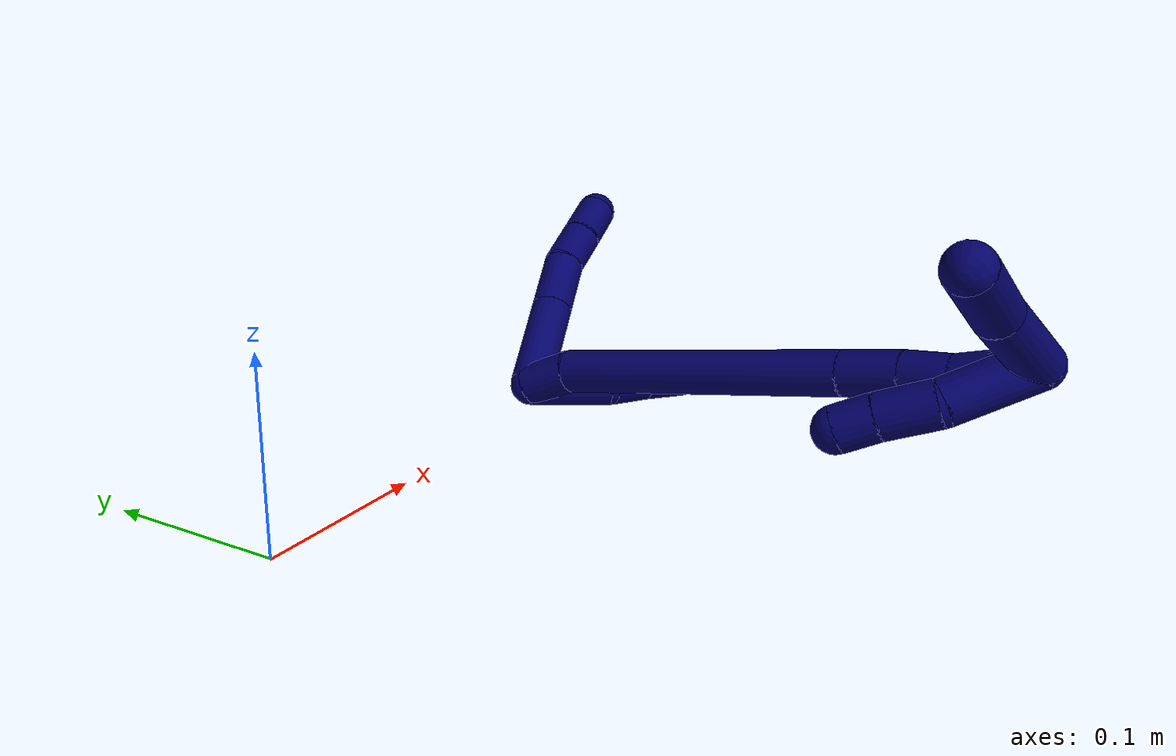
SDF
<sdf version="1.7">
 <world name="default">
  <model name="7">
   <static>0</static>
   <link name="7">
    <collision name="collision-cylinder-e_1_2_8">
     <pose>-0.001303 0.013189 0.026555 -0.460971 -0.043901 0.010303</pose>
     <geometry><cylinder><radius>0.0125</radius><length>0.059357</length></cylinder></geometry>
     <surface>
      <friction><ode><mu>1.16</mu><mu2>1.16</mu2><slip1>0</slip1><slip2>0</slip2></ode></friction>
      <contact><ode><kp>1e+06</kp><kd>1</kd><max_vel>0</max_vel><min_depth>0.001</min_depth></ode></contact>
     </surface>
    </collision>
    <visual name="visual-cylinder-e_1_2_8">
     <pose>-0.001303 0.013189 0.026555 -0.460971 -0.043901 0.010303</pose>
     <geometry><cylinder><radius>0.0125</radius><length>0.059357</length></cylinder></geometry>
     <material><ambient>0.003922 0 0.403922 1</ambient></material>
    </visual>
    <collision name="collision-cylinder-e_2_8_9">
     <pose>-0.004505 0.034953 0.068502 -0.508292 -0.10741 0.027926</pose>
     <geometry><cylinder><radius>0.0125</radius><length>0.035442</length></cylinder></geometry>
     <surface>
      <friction><ode><mu>1.16</mu><mu2>1.16</mu2><slip1>0</slip1><slip2>0</slip2></ode></friction>
      <contact><ode><kp>1e+06</kp><kd>1</kd><max_vel>0</max_vel><min_depth>0.001</min_depth></ode></contact>
     </surface>
    </collision>
    <visual name="visual-cylinder-e_2_8_9">
     <pose>-0.004505 0.034953 0.068502 -0.508292 -0.10741 0.027926</pose>
     <geometry><cylinder><radius>0.0125</radius><length>0.035442</length></cylinder></geometry>
     <material><ambient>0.003922 0 0.403922 1</ambient></material>
    </visual>
    <collision name="collision-cylinder-e_3_9_10">
     <pose>-0.008518 0.046973 0.096614 -0.264506 -0.159044 0.021201</pose>
     <geometry><cylinder><radius>0.0125</radius><length>0.026694</length></cylinder></geometry>
     <surface>
      <friction><ode><mu>1.16</mu><mu2>1.16</mu2><slip1>0</slip1><slip2>0</slip2></ode></friction>
      <contact><ode><kp>1e+06</kp><kd>1</kd><max_vel>0</max_vel><min_depth>0.001</min_depth></ode></contact>
     </surface>
    </collision>
    <visual name="visual-cylinder-e_3_9_10">
     <pose>-0.008518 0.046973 0.096614 -0.264506 -0.159044 0.021201</pose>
     <geometry><cylinder><radius>0.0125</radius><length>0.026694</length></cylinder></geometry>
     <material><ambient>0.003922 0 0.403922 1</ambient></material>
    </visual>
    <collision name="collision-cylinder-e_4_10_6">
     <pose>-0.011335 0.053575 0.123216 -0.223599 -0.049343 0.005541</pose>
     <geometry><cylinder><radius>0.0125</radius><length>0.028506</length></cylinder></geometry>
     <surface>
      <friction><ode><mu>1.16</mu><mu2>1.16</mu2><slip1>0</slip1><slip2>0</slip2></ode></friction>
      <contact><ode><kp>1e+06</kp><kd>1</kd><max_vel>0</max_vel><min_depth>0.001</min_depth></ode></contact>
     </surface>
    </collision>
    <visual name="visual-cylinder-e_4_10_6">
     <pose>-0.011335 0.053575 0.123216 -0.223599 -0.049343 0.005541</pose>
     <geometry><cylinder><radius>0.0125</radius><length>0.028506</length></cylinder></geometry>
     <material><ambient>0.003922 0 0.403922 1</ambient></material>
    </visual>
    <collision name="collision-cylinder-e_1_2_11">
     <pose>-0.014916 -0.013674 0.013378 0.796344 -0.66226 -0.287231</pose>
     <geometry><cylinder><radius>0.0125</radius><length>0.048515</length></cylinder></geometry>
     <surface>
      <friction><ode><mu>1.16</mu><mu2>1.16</mu2><slip1>0</slip1><slip2>0</slip2></ode></friction>
      <contact><ode><kp>1e+06</kp><kd>1</kd><max_vel>0</max_vel><min_depth>0.001</min_depth></ode></contact>
     </surface>
    </collision>
    <visual name="visual-cylinder-e_1_2_11">
     <pose>-0.014916 -0.013674 0.013378 0.796344 -0.66226 -0.287231</pose>
     <geometry><cylinder><radius>0.0125</radius><length>0.048515</length></cylinder></geometry>
     <material><ambient>0.003922 0 0.403922 1</ambient></material>
    </visual>
    <collision name="collision-cylinder-e_2_11_12">
     <pose>-0.034531 -0.032711 0.036004 0.525568 -0.414142 -0.112906</pose>
     <geometry><cylinder><radius>0.0125</radius><length>0.023356</length></cylinder></geometry>
     <surface>
      <friction><ode><mu>1.16</mu><mu2>1.16</mu2><slip1>0</slip1><slip2>0</slip2></ode></friction>
      <contact><ode><kp>1e+06</kp><kd>1</kd><max_vel>0</max_vel><min_depth>0.001</min_depth></ode></contact>
     </surface>
    </collision>
    <visual name="visual-cylinder-e_2_11_12">
     <pose>-0.034531 -0.032711 0.036004 0.525568 -0.414142 -0.112906</pose>
     <geometry><cylinder><radius>0.0125</radius><length>0.023356</length></cylinder></geometry>
     <material><ambient>0.003922 0 0.403922 1</ambient></material>
    </visual>
    <collision name="collision-cylinder-e_3_12_5">
     <pose>-0.043593 -0.045062 0.056651 0.549847 -0.315393 -0.089646</pose>
     <geometry><cylinder><radius>0.0125</radius><length>0.028129</length></cylinder></geometry>
     <surface>
      <friction><ode><mu>1.16</mu><mu2>1.16</mu2><slip1>0</slip1><slip2>0</slip2></ode></friction>
      <contact><ode><kp>1e+06</kp><kd>1</kd><max_vel>0</max_vel><min_depth>0.001</min_depth></ode></contact>
     </surface>
    </collision>
    <visual name="visual-cylinder-e_3_12_5">
     <pose>-0.043593 -0.045062 0.056651 0.549847 -0.315393 -0.089646</pose>
     <geometry><cylinder><radius>0.0125</radius><length>0.028129</length></cylinder></geometry>
     <material><ambient>0.003922 0 0.403922 1</ambient></material>
    </visual>
    <collision name="collision-cylinder-e_1_2_13">
     <pose>-0.014511 -0.001656 0.001647 0.788154 -1.41118 -0.680892</pose>
     <geometry><cylinder><radius>0.0125</radius><length>0.029396</length></cylinder></geometry>
     <surface>
      <friction><ode><mu>1.16</mu><mu2>1.16</mu2><slip1>0</slip1><slip2>0</slip2></ode></friction>
      <contact><ode><kp>1e+06</kp><kd>1</kd><max_vel>0</max_vel><min_depth>0.001</min_depth></ode></contact>
     </surface>
    </collision>
    <visual name="visual-cylinder-e_1_2_13">
     <pose>-0.014511 -0.001656 0.001647 0.788154 -1.41118 -0.680892</pose>
     <geometry><cylinder><radius>0.0125</radius><length>0.029396</length></cylinder></geometry>
     <material><ambient>0.003922 0 0.403922 1</ambient></material>
    </visual>
    <collision name="collision-cylinder-e_2_13_14">
     <pose>-0.109129 -0.032544 -0.000378 1.69579 -1.21838 -1.33829</pose>
     <geometry><cylinder><radius>0.0125</radius><length>0.170706</length></cylinder></geometry>
     <surface>
      <friction><ode><mu>1.16</mu><mu2>1.16</mu2><slip1>0</slip1><slip2>0</slip2></ode></friction>
      <contact><ode><kp>1e+06</kp><kd>1</kd><max_vel>0</max_vel><min_depth>0.001</min_depth></ode></contact>
     </surface>
    </collision>
    <visual name="visual-cylinder-e_2_13_14">
     <pose>-0.109129 -0.032544 -0.000378 1.69579 -1.21838 -1.33829</pose>
     <geometry><cylinder><radius>0.0125</radius><length>0.170706</length></cylinder></geometry>
     <material><ambient>0.003922 0 0.403922 1</ambient></material>
    </visual>
    <collision name="collision-cylinder-e_3_14_15">
     <pose>-0.204804 -0.06727 -0.005263 1.78784 -1.224 -1.43602</pose>
     <geometry><cylinder><radius>0.0125</radius><length>0.033106</length></cylinder></geometry>
     <surface>
      <friction><ode><mu>1.16</mu><mu2>1.16</mu2><slip1>0</slip1><slip2>0</slip2></ode></friction>
      <contact><ode><kp>1e+06</kp><kd>1</kd><max_vel>0</max_vel><min_depth>0.001</min_depth></ode></contact>
     </surface>
    </collision>
    <visual name="visual-cylinder-e_3_14_15">
     <pose>-0.204804 -0.06727 -0.005263 1.78784 -1.224 -1.43602</pose>
     <geometry><cylinder><radius>0.0125</radius><length>0.033106</length></cylinder></geometry>
     <material><ambient>0.003922 0 0.403922 1</ambient></material>
    </visual>
    <collision name="collision-cylinder-e_4_15_16">
     <pose>-0.232104 -0.077624 -0.008186 1.90946 -1.15697 -1.49005</pose>
     <geometry><cylinder><radius>0.0125</radius><length>0.025628</length></cylinder></geometry>
     <surface>
      <friction><ode><mu>1.16</mu><mu2>1.16</mu2><slip1>0</slip1><slip2>0</slip2></ode></friction>
      <contact><ode><kp>1e+06</kp><kd>1</kd><max_vel>0</max_vel><min_depth>0.001</min_depth></ode></contact>
     </surface>
    </collision>
    <visual name="visual-cylinder-e_4_15_16">
     <pose>-0.232104 -0.077624 -0.008186 1.90946 -1.15697 -1.49005</pose>
     <geometry><cylinder><radius>0.0125</radius><length>0.025628</length></cylinder></geometry>
     <material><ambient>0.003922 0 0.403922 1</ambient></material>
    </visual>
    <collision name="collision-cylinder-e_5_16_17">
     <pose>-0.253853 -0.084881 -0.010486 1.81123 -1.3292 -1.56961</pose>
     <geometry><cylinder><radius>0.0125</radius><length>0.020632</length></cylinder></geometry>
     <surface>
      <friction><ode><mu>1.16</mu><mu2>1.16</mu2><slip1>0</slip1><slip2>0</slip2></ode></friction>
      <contact><ode><kp>1e+06</kp><kd>1</kd><max_vel>0</max_vel><min_depth>0.001</min_depth></ode></contact>
     </surface>
    </collision>
    <visual name="visual-cylinder-e_5_16_17">
     <pose>-0.253853 -0.084881 -0.010486 1.81123 -1.3292 -1.56961</pose>
     <geometry><cylinder><radius>0.0125</radius><length>0.020632</length></cylinder></geometry>
     <material><ambient>0.003922 0 0.403922 1</ambient></material>
    </visual>
    <collision name="collision-cylinder-e_6_17_1">
     <pose>-0.274072 -0.088401 -0.010845 1.36981 -1.45902 -1.26148</pose>
     <geometry><cylinder><radius>0.0125</radius><length>0.020531</length></cylinder></geometry>
     <surface>
      <friction><ode><mu>1.16</mu><mu2>1.16</mu2><slip1>0</slip1><slip2>0</slip2></ode></friction>
      <contact><ode><kp>1e+06</kp><kd>1</kd><max_vel>0</max_vel><min_depth>0.001</min_depth></ode></contact>
     </surface>
    </collision>
    <visual name="visual-cylinder-e_6_17_1">
     <pose>-0.274072 -0.088401 -0.010845 1.36981 -1.45902 -1.26148</pose>
     <geometry><cylinder><radius>0.0125</radius><length>0.020531</length></cylinder></geometry>
     <material><ambient>0.003922 0 0.403922 1</ambient></material>
    </visual>
    <collision name="collision-cylinder-e_1_1_18">
     <pose>-0.264005 -0.085396 -0.023189 -2.82445 0.992403 -2.56716</pose>
     <geometry><cylinder><radius>0.0125</radius><length>0.04841</length></cylinder></geometry>
     <surface>
      <friction><ode><mu>1.16</mu><mu2>1.16</mu2><slip1>0</slip1><slip2>0</slip2></ode></friction>
      <contact><ode><kp>1e+06</kp><kd>1</kd><max_vel>0</max_vel><min_depth>0.001</min_depth></ode></contact>
     </surface>
    </collision>
    <visual name="visual-cylinder-e_1_1_18">
     <pose>-0.264005 -0.085396 -0.023189 -2.82445 0.992403 -2.56716</pose>
     <geometry><cylinder><radius>0.0125</radius><length>0.04841</length></cylinder></geometry>
     <material><ambient>0.003922 0 0.403922 1</ambient></material>
    </visual>
    <collision name="collision-cylinder-e_2_18_19">
     <pose>-0.22923 -0.077838 -0.039311 -2.37309 1.24279 -2.11344</pose>
     <geometry><cylinder><radius>0.0125</radius><length>0.030647</length></cylinder></geometry>
     <surface>
      <friction><ode><mu>1.16</mu><mu2>1.16</mu2><slip1>0</slip1><slip2>0</slip2></ode></friction>
      <contact><ode><kp>1e+06</kp><kd>1</kd><max_vel>0</max_vel><min_depth>0.001</min_depth></ode></contact>
     </surface>
    </collision>
    <visual name="visual-cylinder-e_2_18_19">
     <pose>-0.22923 -0.077838 -0.039311 -2.37309 1.24279 -2.11344</pose>
     <geometry><cylinder><radius>0.0125</radius><length>0.030647</length></cylinder></geometry>
     <material><ambient>0.003922 0 0.403922 1</ambient></material>
    </visual>
    <collision name="collision-cylinder-e_3_19_4">
     <pose>-0.204833 -0.072786 -0.045892 -2.65055 1.23624 -2.46398</pose>
     <geometry><cylinder><radius>0.0125</radius><length>0.020942</length></cylinder></geometry>
     <surface>
      <friction><ode><mu>1.16</mu><mu2>1.16</mu2><slip1>0</slip1><slip2>0</slip2></ode></friction>
      <contact><ode><kp>1e+06</kp><kd>1</kd><max_vel>0</max_vel><min_depth>0.001</min_depth></ode></contact>
     </surface>
    </collision>
    <visual name="visual-cylinder-e_3_19_4">
     <pose>-0.204833 -0.072786 -0.045892 -2.65055 1.23624 -2.46398</pose>
     <geometry><cylinder><radius>0.0125</radius><length>0.020942</length></cylinder></geometry>
     <material><ambient>0.003922 0 0.403922 1</ambient></material>
    </visual>
    <collision name="collision-cylinder-e_1_1_20">
     <pose>-0.288145 -0.068074 -0.026749 -2.21565 -0.143274 0.285568</pose>
     <geometry><cylinder><radius>0.0125</radius><length>0.054233</length></cylinder></geometry>
     <surface>
      <friction><ode><mu>1.16</mu><mu2>1.16</mu2><slip1>0</slip1><slip2>0</slip2></ode></friction>
      <contact><ode><kp>1e+06</kp><kd>1</kd><max_vel>0</max_vel><min_depth>0.001</min_depth></ode></contact>
     </surface>
    </collision>
    <visual name="visual-cylinder-e_1_1_20">
     <pose>-0.288145 -0.068074 -0.026749 -2.21565 -0.143274 0.285568</pose>
     <geometry><cylinder><radius>0.0125</radius><length>0.054233</length></cylinder></geometry>
     <material><ambient>0.003922 0 0.403922 1</ambient></material>
    </visual>
    <collision name="collision-cylinder-e_2_20_3">
     <pose>-0.297558 -0.029983 -0.057578 -2.29423 -0.244573 0.532092</pose>
     <geometry><cylinder><radius>0.0125</radius><length>0.045767</length></cylinder></geometry>
     <surface>
      <friction><ode><mu>1.16</mu><mu2>1.16</mu2><slip1>0</slip1><slip2>0</slip2></ode></friction>
      <contact><ode><kp>1e+06</kp><kd>1</kd><max_vel>0</max_vel><min_depth>0.001</min_depth></ode></contact>
     </surface>
    </collision>
    <visual name="visual-cylinder-e_2_20_3">
     <pose>-0.297558 -0.029983 -0.057578 -2.29423 -0.244573 0.532092</pose>
     <geometry><cylinder><radius>0.0125</radius><length>0.045767</length></cylinder></geometry>
     <material><ambient>0.003922 0 0.403922 1</ambient></material>
    </visual>
    <collision name="collision-sphere-3">
     <pose>-0.303099 -0.013341 -0.072275 0 -0 0</pose>
     <geometry><sphere><radius>0.0125</radius></sphere></geometry>
     <surface>
      <friction><ode><mu>1.16</mu><mu2>1.16</mu2><slip1>0</slip1><slip2>0</slip2></ode></friction>
      <contact><ode><kp>1e+06</kp><kd>1</kd><max_vel>0</max_vel><min_depth>0.001</min_depth></ode></contact>
     </surface>
    </collision>
    <visual name="visual-sphere-3">
     <pose>-0.303099 -0.013341 -0.072275 0 -0 0</pose>
     <geometry><sphere><radius>0.0125</radius></sphere></geometry>
     <material><ambient>0.003922 0 0.403922 1</ambient></material>
    </visual>
    <collision name="collision-sphere-20">
     <pose>-0.292017 -0.046624 -0.042881 0 -0 0</pose>
     <geometry><sphere><radius>0.0125</radius></sphere></geometry>
     <surface>
      <friction><ode><mu>1.16</mu><mu2>1.16</mu2><slip1>0</slip1><slip2>0</slip2></ode></friction>
      <contact><ode><kp>1e+06</kp><kd>1</kd><max_vel>0</max_vel><min_depth>0.001</min_depth></ode></contact>
     </surface>
    </collision>
    <visual name="visual-sphere-20">
     <pose>-0.292017 -0.046624 -0.042881 0 -0 0</pose>
     <geometry><sphere><radius>0.0125</radius></sphere></geometry>
     <material><ambient>0.003922 0 0.403922 1</ambient></material>
    </visual>
    <collision name="collision-sphere-4">
     <pose>-0.194943 -0.071164 -0.048924 0 -0 0</pose>
     <geometry><sphere><radius>0.0125</radius></sphere></geometry>
     <surface>
      <friction><ode><mu>1.16</mu><mu2>1.16</mu2><slip1>0</slip1><slip2>0</slip2></ode></friction>
      <contact><ode><kp>1e+06</kp><kd>1</kd><max_vel>0</max_vel><min_depth>0.001</min_depth></ode></contact>
     </surface>
    </collision>
    <visual name="visual-sphere-4">
     <pose>-0.194943 -0.071164 -0.048924 0 -0 0</pose>
     <geometry><sphere><radius>0.0125</radius></sphere></geometry>
     <material><ambient>0.003922 0 0.403922 1</ambient></material>
    </visual>
    <collision name="collision-sphere-11">
     <pose>-0.029832 -0.027348 0.026756 0 -0 0</pose>
     <geometry><sphere><radius>0.0125</radius></sphere></geometry>
     <surface>
      <friction><ode><mu>1.16</mu><mu2>1.16</mu2><slip1>0</slip1><slip2>0</slip2></ode></friction>
      <contact><ode><kp>1e+06</kp><kd>1</kd><max_vel>0</max_vel><min_depth>0.001</min_depth></ode></contact>
     </surface>
    </collision>
    <visual name="visual-sphere-11">
     <pose>-0.029832 -0.027348 0.026756 0 -0 0</pose>
     <geometry><sphere><radius>0.0125</radius></sphere></geometry>
     <material><ambient>0.003922 0 0.403922 1</ambient></material>
    </visual>
    <collision name="collision-sphere-6">
     <pose>-0.012038 0.056731 0.137097 0 -0 0</pose>
     <geometry><sphere><radius>0.0125</radius></sphere></geometry>
     <surface>
      <friction><ode><mu>1.16</mu><mu2>1.16</mu2><slip1>0</slip1><slip2>0</slip2></ode></friction>
      <contact><ode><kp>1e+06</kp><kd>1</kd><max_vel>0</max_vel><min_depth>0.001</min_depth></ode></contact>
     </surface>
    </collision>
    <visual name="visual-sphere-6">
     <pose>-0.012038 0.056731 0.137097 0 -0 0</pose>
     <geometry><sphere><radius>0.0125</radius></sphere></geometry>
     <material><ambient>0.003922 0 0.403922 1</ambient></material>
    </visual>
    <collision name="collision-sphere-10">
     <pose>-0.010632 0.050418 0.109334 0 -0 0</pose>
     <geometry><sphere><radius>0.0125</radius></sphere></geometry>
     <surface>
      <friction><ode><mu>1.16</mu><mu2>1.16</mu2><slip1>0</slip1><slip2>0</slip2></ode></friction>
      <contact><ode><kp>1e+06</kp><kd>1</kd><max_vel>0</max_vel><min_depth>0.001</min_depth></ode></contact>
     </surface>
    </collision>
    <visual name="visual-sphere-10">
     <pose>-0.010632 0.050418 0.109334 0 -0 0</pose>
     <geometry><sphere><radius>0.0125</radius></sphere></geometry>
     <material><ambient>0.003922 0 0.403922 1</ambient></material>
    </visual>
    <collision name="collision-sphere-9">
     <pose>-0.006405 0.043527 0.083893 0 -0 0</pose>
     <geometry><sphere><radius>0.0125</radius></sphere></geometry>
     <surface>
      <friction><ode><mu>1.16</mu><mu2>1.16</mu2><slip1>0</slip1><slip2>0</slip2></ode></friction>
      <contact><ode><kp>1e+06</kp><kd>1</kd><max_vel>0</max_vel><min_depth>0.001</min_depth></ode></contact>
     </surface>
    </collision>
    <visual name="visual-sphere-9">
     <pose>-0.006405 0.043527 0.083893 0 -0 0</pose>
     <geometry><sphere><radius>0.0125</radius></sphere></geometry>
     <material><ambient>0.003922 0 0.403922 1</ambient></material>
    </visual>
    <collision name="collision-sphere-2">
     <geometry><sphere><radius>0.0125</radius></sphere></geometry>
     <surface>
      <friction><ode><mu>1.16</mu><mu2>1.16</mu2><slip1>0</slip1><slip2>0</slip2></ode></friction>
      <contact><ode><kp>1e+06</kp><kd>1</kd><max_vel>0</max_vel><min_depth>0.001</min_depth></ode></contact>
     </surface>
    </collision>
    <visual name="visual-sphere-2">
     <geometry><sphere><radius>0.0125</radius></sphere></geometry>
     <material><ambient>0.003922 0 0.403922 1</ambient></material>
    </visual>
    <collision name="collision-sphere-19">
     <pose>-0.214724 -0.074407 -0.04286 0 -0 0</pose>
     <geometry><sphere><radius>0.0125</radius></sphere></geometry>
     <surface>
      <friction><ode><mu>1.16</mu><mu2>1.16</mu2><slip1>0</slip1><slip2>0</slip2></ode></friction>
      <contact><ode><kp>1e+06</kp><kd>1</kd><max_vel>0</max_vel><min_depth>0.001</min_depth></ode></contact>
     </surface>
    </collision>
    <visual name="visual-sphere-19">
     <pose>-0.214724 -0.074407 -0.04286 0 -0 0</pose>
     <geometry><sphere><radius>0.0125</radius></sphere></geometry>
     <material><ambient>0.003922 0 0.403922 1</ambient></material>
    </visual>
    <collision name="collision-sphere-8">
     <pose>-0.002605 0.026378 0.05311 0 -0 0</pose>
     <geometry><sphere><radius>0.0125</radius></sphere></geometry>
     <surface>
      <friction><ode><mu>1.16</mu><mu2>1.16</mu2><slip1>0</slip1><slip2>0</slip2></ode></friction>
      <contact><ode><kp>1e+06</kp><kd>1</kd><max_vel>0</max_vel><min_depth>0.001</min_depth></ode></contact>
     </surface>
    </collision>
    <visual name="visual-sphere-8">
     <pose>-0.002605 0.026378 0.05311 0 -0 0</pose>
     <geometry><sphere><radius>0.0125</radius></sphere></geometry>
     <material><ambient>0.003922 0 0.403922 1</ambient></material>
    </visual>
    <collision name="collision-sphere-12">
     <pose>-0.039231 -0.038075 0.045251 0 -0 0</pose>
     <geometry><sphere><radius>0.0125</radius></sphere></geometry>
     <surface>
      <friction><ode><mu>1.16</mu><mu2>1.16</mu2><slip1>0</slip1><slip2>0</slip2></ode></friction>
      <contact><ode><kp>1e+06</kp><kd>1</kd><max_vel>0</max_vel><min_depth>0.001</min_depth></ode></contact>
     </surface>
    </collision>
    <visual name="visual-sphere-12">
     <pose>-0.039231 -0.038075 0.045251 0 -0 0</pose>
     <geometry><sphere><radius>0.0125</radius></sphere></geometry>
     <material><ambient>0.003922 0 0.403922 1</ambient></material>
    </visual>
    <collision name="collision-sphere-5">
     <pose>-0.047956 -0.052049 0.068051 0 -0 0</pose>
     <geometry><sphere><radius>0.0125</radius></sphere></geometry>
     <surface>
      <friction><ode><mu>1.16</mu><mu2>1.16</mu2><slip1>0</slip1><slip2>0</slip2></ode></friction>
      <contact><ode><kp>1e+06</kp><kd>1</kd><max_vel>0</max_vel><min_depth>0.001</min_depth></ode></contact>
     </surface>
    </collision>
    <visual name="visual-sphere-5">
     <pose>-0.047956 -0.052049 0.068051 0 -0 0</pose>
     <geometry><sphere><radius>0.0125</radius></sphere></geometry>
     <material><ambient>0.003922 0 0.403922 1</ambient></material>
    </visual>
    <collision name="collision-sphere-13">
     <pose>-0.029022 -0.003313 0.003295 0 -0 0</pose>
     <geometry><sphere><radius>0.0125</radius></sphere></geometry>
     <surface>
      <friction><ode><mu>1.16</mu><mu2>1.16</mu2><slip1>0</slip1><slip2>0</slip2></ode></friction>
      <contact><ode><kp>1e+06</kp><kd>1</kd><max_vel>0</max_vel><min_depth>0.001</min_depth></ode></contact>
     </surface>
    </collision>
    <visual name="visual-sphere-13">
     <pose>-0.029022 -0.003313 0.003295 0 -0 0</pose>
     <geometry><sphere><radius>0.0125</radius></sphere></geometry>
     <material><ambient>0.003922 0 0.403922 1</ambient></material>
    </visual>
    <collision name="collision-sphere-14">
     <pose>-0.189237 -0.061776 -0.004051 0 -0 0</pose>
     <geometry><sphere><radius>0.0125</radius></sphere></geometry>
     <surface>
      <friction><ode><mu>1.16</mu><mu2>1.16</mu2><slip1>0</slip1><slip2>0</slip2></ode></friction>
      <contact><ode><kp>1e+06</kp><kd>1</kd><max_vel>0</max_vel><min_depth>0.001</min_depth></ode></contact>
     </surface>
    </collision>
    <visual name="visual-sphere-14">
     <pose>-0.189237 -0.061776 -0.004051 0 -0 0</pose>
     <geometry><sphere><radius>0.0125</radius></sphere></geometry>
     <material><ambient>0.003922 0 0.403922 1</ambient></material>
    </visual>
    <collision name="collision-sphere-15">
     <pose>-0.220372 -0.072764 -0.006474 0 -0 0</pose>
     <geometry><sphere><radius>0.0125</radius></sphere></geometry>
     <surface>
      <friction><ode><mu>1.16</mu><mu2>1.16</mu2><slip1>0</slip1><slip2>0</slip2></ode></friction>
      <contact><ode><kp>1e+06</kp><kd>1</kd><max_vel>0</max_vel><min_depth>0.001</min_depth></ode></contact>
     </surface>
    </collision>
    <visual name="visual-sphere-15">
     <pose>-0.220372 -0.072764 -0.006474 0 -0 0</pose>
     <geometry><sphere><radius>0.0125</radius></sphere></geometry>
     <material><ambient>0.003922 0 0.403922 1</ambient></material>
    </visual>
    <collision name="collision-sphere-16">
     <pose>-0.243837 -0.082484 -0.009898 0 -0 0</pose>
     <geometry><sphere><radius>0.0125</radius></sphere></geometry>
     <surface>
      <friction><ode><mu>1.16</mu><mu2>1.16</mu2><slip1>0</slip1><slip2>0</slip2></ode></friction>
      <contact><ode><kp>1e+06</kp><kd>1</kd><max_vel>0</max_vel><min_depth>0.001</min_depth></ode></contact>
     </surface>
    </collision>
    <visual name="visual-sphere-16">
     <pose>-0.243837 -0.082484 -0.009898 0 -0 0</pose>
     <geometry><sphere><radius>0.0125</radius></sphere></geometry>
     <material><ambient>0.003922 0 0.403922 1</ambient></material>
    </visual>
    <collision name="collision-sphere-17">
     <pose>-0.26387 -0.087279 -0.011074 0 -0 0</pose>
     <geometry><sphere><radius>0.0125</radius></sphere></geometry>
     <surface>
      <friction><ode><mu>1.16</mu><mu2>1.16</mu2><slip1>0</slip1><slip2>0</slip2></ode></friction>
      <contact><ode><kp>1e+06</kp><kd>1</kd><max_vel>0</max_vel><min_depth>0.001</min_depth></ode></contact>
     </surface>
    </collision>
    <visual name="visual-sphere-17">
     <pose>-0.26387 -0.087279 -0.011074 0 -0 0</pose>
     <geometry><sphere><radius>0.0125</radius></sphere></geometry>
     <material><ambient>0.003922 0 0.403922 1</ambient></material>
    </visual>
    <collision name="collision-sphere-1">
     <pose>-0.284273 -0.089523 -0.010617 0 -0 0</pose>
     <geometry><sphere><radius>0.0125</radius></sphere></geometry>
     <surface>
      <friction><ode><mu>1.16</mu><mu2>1.16</mu2><slip1>0</slip1><slip2>0</slip2></ode></friction>
      <contact><ode><kp>1e+06</kp><kd>1</kd><max_vel>0</max_vel><min_depth>0.001</min_depth></ode></contact>
     </surface>
    </collision>
    <visual name="visual-sphere-1">
     <pose>-0.284273 -0.089523 -0.010617 0 -0 0</pose>
     <geometry><sphere><radius>0.0125</radius></sphere></geometry>
     <material><ambient>0.003922 0 0.403922 1</ambient></material>
    </visual>
    <collision name="collision-sphere-18">
     <pose>-0.243737 -0.081269 -0.035762 0 -0 0</pose>
     <geometry><sphere><radius>0.0125</radius></sphere></geometry>
     <surface>
      <friction><ode><mu>1.16</mu><mu2>1.16</mu2><slip1>0</slip1><slip2>0</slip2></ode></friction>
      <contact><ode><kp>1e+06</kp><kd>1</kd><max_vel>0</max_vel><min_depth>0.001</min_depth></ode></contact>
     </surface>
    </collision>
    <visual name="visual-sphere-18">
     <pose>-0.243737 -0.081269 -0.035762 0 -0 0</pose>
     <geometry><sphere><radius>0.0125</radius></sphere></geometry>
     <material><ambient>0.003922 0 0.403922 1</ambient></material>
    </visual>
    <inertial>
     <pose>-0.132712 -0.032516 0.006621 0 -0 0</pose>
     <mass>0.75</mass>
     <inertia><ixx>-7e-05</ixx><ixy>0</ixy><ixz>0</ixz><iyy>0.000283</iyy><iyz>0</iyz><izz>0.000537</izz></inertia>
    </inertial>
   </link>
   <pose>0.225824 0.00222 0.01705 1.32217 0.526783 1.49476</pose>
  </model>
 </world>
</sdf>
